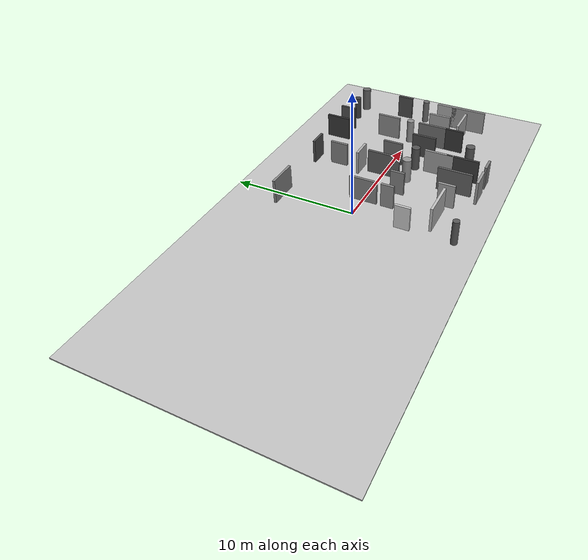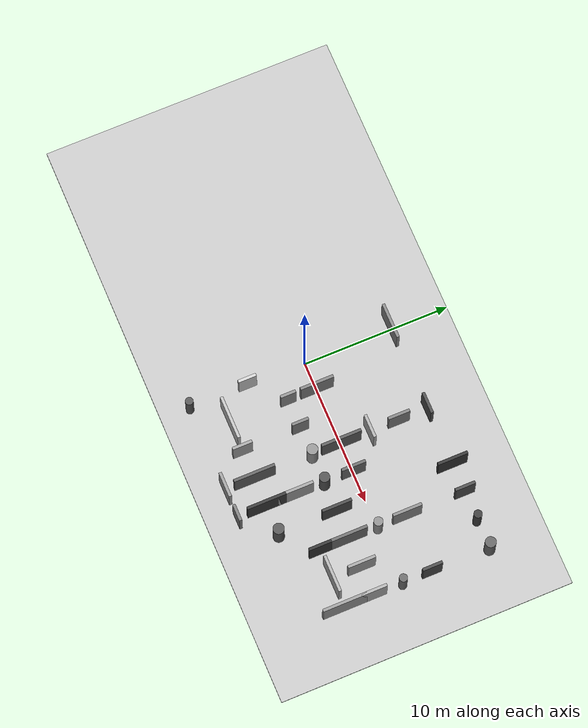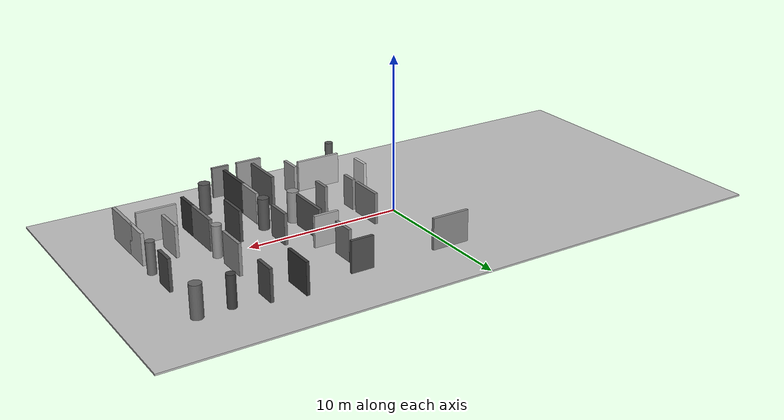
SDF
<sdf version="1.7">
 <world name="default">
  <model name="ground_plane">
   <static>true</static>
   <link name="link">
    <pose>0.0 0.0 -0.05 0 0 0</pose>
    <visual name="visual">
     <material>
      <ambient>0.7535816217733602 0.7535816217733602 0.7535816217733602 1</ambient>
      <diffuse>0.7535816217733602 0.7535816217733602 0.7535816217733602 1</diffuse>
     </material>
     <geometry><box><size>40.0 20.0 0.1</size></box></geometry>
    </visual>
    <collision name="collision">
     <geometry><box><size>40.0 20.0 0.1</size></box></geometry>
     <surface>
      <friction><ode><mu>100</mu><mu2>50.0</mu2><slip1>0.0</slip1><slip2>0.0</slip2></ode></friction>
      <contact><ode><kp>10000.0</kp><kd>100.0</kd></ode></contact>
     </surface>
    </collision>
   </link>
  </model>
  <model name="pn_pillar_36">
   <static>true</static>
   <link name="link">
    <pose>0.0 -8.0 1.0 0 0 0</pose>
    <visual name="visual">
     <material>
      <ambient>0.33702420317026577 0.33702420317026577 0.33702420317026577 1</ambient>
      <diffuse>0.33702420317026577 0.33702420317026577 0.33702420317026577 1</diffuse>
     </material>
     <geometry><cylinder><radius>0.26581402886206534</radius><length>2.0</length></cylinder></geometry>
    </visual>
    <collision name="collision">
     <geometry><cylinder><radius>0.26581402886206534</radius><length>2.0</length></cylinder></geometry>
     <surface>
      <friction><ode><mu>100</mu><mu2>50.0</mu2><slip1>0.0</slip1><slip2>0.0</slip2></ode></friction>
      <contact><ode><kp>10000.0</kp><kd>100.0</kd></ode></contact>
     </surface>
    </collision>
   </link>
  </model>
  <model name="pn_wall_37">
   <static>true</static>
   <link name="link">
    <pose>0.0 -4.0 1.0 0 0 0</pose>
    <visual name="visual">
     <material>
      <ambient>0.798513575407434 0.798513575407434 0.798513575407434 1</ambient>
      <diffuse>0.798513575407434 0.798513575407434 0.798513575407434 1</diffuse>
     </material>
     <geometry><box><size>0.2 1.237032217124113 2.0</size></box></geometry>
    </visual>
    <collision name="collision">
     <geometry><box><size>0.2 1.237032217124113 2.0</size></box></geometry>
     <surface>
      <friction><ode><mu>100</mu><mu2>50.0</mu2><slip1>0.0</slip1><slip2>0.0</slip2></ode></friction>
      <contact><ode><kp>10000.0</kp><kd>100.0</kd></ode></contact>
     </surface>
    </collision>
   </link>
  </model>
  <model name="pn_wall_38">
   <static>true</static>
   <link name="link">
    <pose>0.0 6.0 1.0 0 0 0</pose>
    <visual name="visual">
     <material>
      <ambient>0.5315325175535008 0.5315325175535008 0.5315325175535008 1</ambient>
      <diffuse>0.5315325175535008 0.5315325175535008 0.5315325175535008 1</diffuse>
     </material>
     <geometry><box><size>2.426093998447632 0.2 2.0</size></box></geometry>
    </visual>
    <collision name="collision">
     <geometry><box><size>2.426093998447632 0.2 2.0</size></box></geometry>
     <surface>
      <friction><ode><mu>100</mu><mu2>50.0</mu2><slip1>0.0</slip1><slip2>0.0</slip2></ode></friction>
      <contact><ode><kp>10000.0</kp><kd>100.0</kd></ode></contact>
     </surface>
    </collision>
   </link>
  </model>
  <model name="pn_wall_39">
   <static>true</static>
   <link name="link">
    <pose>2.0 -6.0 1.0 0 0 0</pose>
    <visual name="visual">
     <material>
      <ambient>0.7362320643856635 0.7362320643856635 0.7362320643856635 1</ambient>
      <diffuse>0.7362320643856635 0.7362320643856635 0.7362320643856635 1</diffuse>
     </material>
     <geometry><box><size>2.9413728022067014 0.2 2.0</size></box></geometry>
    </visual>
    <collision name="collision">
     <geometry><box><size>2.9413728022067014 0.2 2.0</size></box></geometry>
     <surface>
      <friction><ode><mu>100</mu><mu2>50.0</mu2><slip1>0.0</slip1><slip2>0.0</slip2></ode></friction>
      <contact><ode><kp>10000.0</kp><kd>100.0</kd></ode></contact>
     </surface>
    </collision>
   </link>
  </model>
  <model name="pn_wall_40">
   <static>true</static>
   <link name="link">
    <pose>2.0 -2.0 1.0 0 0 0</pose>
    <visual name="visual">
     <material>
      <ambient>0.5537083821378184 0.5537083821378184 0.5537083821378184 1</ambient>
      <diffuse>0.5537083821378184 0.5537083821378184 0.5537083821378184 1</diffuse>
     </material>
     <geometry><box><size>0.2 1.0596877214101241 2.0</size></box></geometry>
    </visual>
    <collision name="collision">
     <geometry><box><size>0.2 1.0596877214101241 2.0</size></box></geometry>
     <surface>
      <friction><ode><mu>100</mu><mu2>50.0</mu2><slip1>0.0</slip1><slip2>0.0</slip2></ode></friction>
      <contact><ode><kp>10000.0</kp><kd>100.0</kd></ode></contact>
     </surface>
    </collision>
   </link>
  </model>
  <model name="pn_wall_41">
   <static>true</static>
   <link name="link">
    <pose>2.0 0.0 1.0 0 0 0</pose>
    <visual name="visual">
     <material>
      <ambient>0.5077925392311062 0.5077925392311062 0.5077925392311062 1</ambient>
      <diffuse>0.5077925392311062 0.5077925392311062 0.5077925392311062 1</diffuse>
     </material>
     <geometry><box><size>0.2 2.2766122840801226 2.0</size></box></geometry>
    </visual>
    <collision name="collision">
     <geometry><box><size>0.2 2.2766122840801226 2.0</size></box></geometry>
     <surface>
      <friction><ode><mu>100</mu><mu2>50.0</mu2><slip1>0.0</slip1><slip2>0.0</slip2></ode></friction>
      <contact><ode><kp>10000.0</kp><kd>100.0</kd></ode></contact>
     </surface>
    </collision>
   </link>
  </model>
  <model name="pn_wall_42">
   <static>true</static>
   <link name="link">
    <pose>4.0 -6.0 1.0 0 0 0</pose>
    <visual name="visual">
     <material>
      <ambient>0.6366177036136795 0.6366177036136795 0.6366177036136795 1</ambient>
      <diffuse>0.6366177036136795 0.6366177036136795 0.6366177036136795 1</diffuse>
     </material>
     <geometry><box><size>0.2 1.3540173830277265 2.0</size></box></geometry>
    </visual>
    <collision name="collision">
     <geometry><box><size>0.2 1.3540173830277265 2.0</size></box></geometry>
     <surface>
      <friction><ode><mu>100</mu><mu2>50.0</mu2><slip1>0.0</slip1><slip2>0.0</slip2></ode></friction>
      <contact><ode><kp>10000.0</kp><kd>100.0</kd></ode></contact>
     </surface>
    </collision>
   </link>
  </model>
  <model name="pn_wall_43">
   <static>true</static>
   <link name="link">
    <pose>4.0 -2.0 1.0 0 0 0</pose>
    <visual name="visual">
     <material>
      <ambient>0.505876637994478 0.505876637994478 0.505876637994478 1</ambient>
      <diffuse>0.505876637994478 0.505876637994478 0.505876637994478 1</diffuse>
     </material>
     <geometry><box><size>0.2 1.1434389061023358 2.0</size></box></geometry>
    </visual>
    <collision name="collision">
     <geometry><box><size>0.2 1.1434389061023358 2.0</size></box></geometry>
     <surface>
      <friction><ode><mu>100</mu><mu2>50.0</mu2><slip1>0.0</slip1><slip2>0.0</slip2></ode></friction>
      <contact><ode><kp>10000.0</kp><kd>100.0</kd></ode></contact>
     </surface>
    </collision>
   </link>
  </model>
  <model name="pn_wall_44">
   <static>true</static>
   <link name="link">
    <pose>6.0 -8.0 1.0 0 0 0</pose>
    <visual name="visual">
     <material>
      <ambient>0.6090184408394677 0.6090184408394677 0.6090184408394677 1</ambient>
      <diffuse>0.6090184408394677 0.6090184408394677 0.6090184408394677 1</diffuse>
     </material>
     <geometry><box><size>1.704034391255914 0.2 2.0</size></box></geometry>
    </visual>
    <collision name="collision">
     <geometry><box><size>1.704034391255914 0.2 2.0</size></box></geometry>
     <surface>
      <friction><ode><mu>100</mu><mu2>50.0</mu2><slip1>0.0</slip1><slip2>0.0</slip2></ode></friction>
      <contact><ode><kp>10000.0</kp><kd>100.0</kd></ode></contact>
     </surface>
    </collision>
   </link>
  </model>
  <model name="pn_wall_45">
   <static>true</static>
   <link name="link">
    <pose>6.0 -6.0 1.0 0 0 0</pose>
    <visual name="visual">
     <material>
      <ambient>0.38466146864269846 0.38466146864269846 0.38466146864269846 1</ambient>
      <diffuse>0.38466146864269846 0.38466146864269846 0.38466146864269846 1</diffuse>
     </material>
     <geometry><box><size>0.2 2.8123936497457684 2.0</size></box></geometry>
    </visual>
    <collision name="collision">
     <geometry><box><size>0.2 2.8123936497457684 2.0</size></box></geometry>
     <surface>
      <friction><ode><mu>100</mu><mu2>50.0</mu2><slip1>0.0</slip1><slip2>0.0</slip2></ode></friction>
      <contact><ode><kp>10000.0</kp><kd>100.0</kd></ode></contact>
     </surface>
    </collision>
   </link>
  </model>
  <model name="pn_pillar_46">
   <static>true</static>
   <link name="link">
    <pose>6.0 -2.0 1.0 0 0 0</pose>
    <visual name="visual">
     <material>
      <ambient>0.5671794305619734 0.5671794305619734 0.5671794305619734 1</ambient>
      <diffuse>0.5671794305619734 0.5671794305619734 0.5671794305619734 1</diffuse>
     </material>
     <geometry><cylinder><radius>0.3707865974004749</radius><length>2.0</length></cylinder></geometry>
    </visual>
    <collision name="collision">
     <geometry><cylinder><radius>0.3707865974004749</radius><length>2.0</length></cylinder></geometry>
     <surface>
      <friction><ode><mu>100</mu><mu2>50.0</mu2><slip1>0.0</slip1><slip2>0.0</slip2></ode></friction>
      <contact><ode><kp>10000.0</kp><kd>100.0</kd></ode></contact>
     </surface>
    </collision>
   </link>
  </model>
  <model name="pn_wall_47">
   <static>true</static>
   <link name="link">
    <pose>6.0 0.0 1.0 0 0 0</pose>
    <visual name="visual">
     <material>
      <ambient>0.36766678372788875 0.36766678372788875 0.36766678372788875 1</ambient>
      <diffuse>0.36766678372788875 0.36766678372788875 0.36766678372788875 1</diffuse>
     </material>
     <geometry><box><size>0.2 2.73785276273807 2.0</size></box></geometry>
    </visual>
    <collision name="collision">
     <geometry><box><size>0.2 2.73785276273807 2.0</size></box></geometry>
     <surface>
      <friction><ode><mu>100</mu><mu2>50.0</mu2><slip1>0.0</slip1><slip2>0.0</slip2></ode></friction>
      <contact><ode><kp>10000.0</kp><kd>100.0</kd></ode></contact>
     </surface>
    </collision>
   </link>
  </model>
  <model name="pn_wall_48">
   <static>true</static>
   <link name="link">
    <pose>6.0 2.0 1.0 0 0 0</pose>
    <visual name="visual">
     <material>
      <ambient>0.6784951828039842 0.6784951828039842 0.6784951828039842 1</ambient>
      <diffuse>0.6784951828039842 0.6784951828039842 0.6784951828039842 1</diffuse>
     </material>
     <geometry><box><size>1.6064513385768302 0.2 2.0</size></box></geometry>
    </visual>
    <collision name="collision">
     <geometry><box><size>1.6064513385768302 0.2 2.0</size></box></geometry>
     <surface>
      <friction><ode><mu>100</mu><mu2>50.0</mu2><slip1>0.0</slip1><slip2>0.0</slip2></ode></friction>
      <contact><ode><kp>10000.0</kp><kd>100.0</kd></ode></contact>
     </surface>
    </collision>
   </link>
  </model>
  <model name="pn_wall_49">
   <static>true</static>
   <link name="link">
    <pose>6.0 4.0 1.0 0 0 0</pose>
    <visual name="visual">
     <material>
      <ambient>0.500079279258266 0.500079279258266 0.500079279258266 1</ambient>
      <diffuse>0.500079279258266 0.500079279258266 0.500079279258266 1</diffuse>
     </material>
     <geometry><box><size>0.2 1.4780950709816867 2.0</size></box></geometry>
    </visual>
    <collision name="collision">
     <geometry><box><size>0.2 1.4780950709816867 2.0</size></box></geometry>
     <surface>
      <friction><ode><mu>100</mu><mu2>50.0</mu2><slip1>0.0</slip1><slip2>0.0</slip2></ode></friction>
      <contact><ode><kp>10000.0</kp><kd>100.0</kd></ode></contact>
     </surface>
    </collision>
   </link>
  </model>
  <model name="pn_wall_50">
   <static>true</static>
   <link name="link">
    <pose>6.0 6.0 1.0 0 0 0</pose>
    <visual name="visual">
     <material>
      <ambient>0.30949495093621376 0.30949495093621376 0.30949495093621376 1</ambient>
      <diffuse>0.30949495093621376 0.30949495093621376 0.30949495093621376 1</diffuse>
     </material>
     <geometry><box><size>1.466066561398027 0.2 2.0</size></box></geometry>
    </visual>
    <collision name="collision">
     <geometry><box><size>1.466066561398027 0.2 2.0</size></box></geometry>
     <surface>
      <friction><ode><mu>100</mu><mu2>50.0</mu2><slip1>0.0</slip1><slip2>0.0</slip2></ode></friction>
      <contact><ode><kp>10000.0</kp><kd>100.0</kd></ode></contact>
     </surface>
    </collision>
   </link>
  </model>
  <model name="pn_wall_51">
   <static>true</static>
   <link name="link">
    <pose>8.0 -8.0 1.0 0 0 0</pose>
    <visual name="visual">
     <material>
      <ambient>0.4970963275652117 0.4970963275652117 0.4970963275652117 1</ambient>
      <diffuse>0.4970963275652117 0.4970963275652117 0.4970963275652117 1</diffuse>
     </material>
     <geometry><box><size>1.1441828347300091 0.2 2.0</size></box></geometry>
    </visual>
    <collision name="collision">
     <geometry><box><size>1.1441828347300091 0.2 2.0</size></box></geometry>
     <surface>
      <friction><ode><mu>100</mu><mu2>50.0</mu2><slip1>0.0</slip1><slip2>0.0</slip2></ode></friction>
      <contact><ode><kp>10000.0</kp><kd>100.0</kd></ode></contact>
     </surface>
    </collision>
   </link>
  </model>
  <model name="pn_wall_52">
   <static>true</static>
   <link name="link">
    <pose>8.0 -6.0 1.0 0 0 0</pose>
    <visual name="visual">
     <material>
      <ambient>0.2325904337042177 0.2325904337042177 0.2325904337042177 1</ambient>
      <diffuse>0.2325904337042177 0.2325904337042177 0.2325904337042177 1</diffuse>
     </material>
     <geometry><box><size>0.2 2.651976561176255 2.0</size></box></geometry>
    </visual>
    <collision name="collision">
     <geometry><box><size>0.2 2.651976561176255 2.0</size></box></geometry>
     <surface>
      <friction><ode><mu>100</mu><mu2>50.0</mu2><slip1>0.0</slip1><slip2>0.0</slip2></ode></friction>
      <contact><ode><kp>10000.0</kp><kd>100.0</kd></ode></contact>
     </surface>
    </collision>
   </link>
  </model>
  <model name="pn_wall_53">
   <static>true</static>
   <link name="link">
    <pose>8.0 -4.0 1.0 0 0 0</pose>
    <visual name="visual">
     <material>
      <ambient>0.6249055409510492 0.6249055409510492 0.6249055409510492 1</ambient>
      <diffuse>0.6249055409510492 0.6249055409510492 0.6249055409510492 1</diffuse>
     </material>
     <geometry><box><size>0.2 2.4329079809341705 2.0</size></box></geometry>
    </visual>
    <collision name="collision">
     <geometry><box><size>0.2 2.4329079809341705 2.0</size></box></geometry>
     <surface>
      <friction><ode><mu>100</mu><mu2>50.0</mu2><slip1>0.0</slip1><slip2>0.0</slip2></ode></friction>
      <contact><ode><kp>10000.0</kp><kd>100.0</kd></ode></contact>
     </surface>
    </collision>
   </link>
  </model>
  <model name="pn_pillar_54">
   <static>true</static>
   <link name="link">
    <pose>8.0 -2.0 1.0 0 0 0</pose>
    <visual name="visual">
     <material>
      <ambient>0.3172600690091154 0.3172600690091154 0.3172600690091154 1</ambient>
      <diffuse>0.3172600690091154 0.3172600690091154 0.3172600690091154 1</diffuse>
     </material>
     <geometry><cylinder><radius>0.3519795635796129</radius><length>2.0</length></cylinder></geometry>
    </visual>
    <collision name="collision">
     <geometry><cylinder><radius>0.3519795635796129</radius><length>2.0</length></cylinder></geometry>
     <surface>
      <friction><ode><mu>100</mu><mu2>50.0</mu2><slip1>0.0</slip1><slip2>0.0</slip2></ode></friction>
      <contact><ode><kp>10000.0</kp><kd>100.0</kd></ode></contact>
     </surface>
    </collision>
   </link>
  </model>
  <model name="pn_wall_55">
   <static>true</static>
   <link name="link">
    <pose>8.0 0.0 1.0 0 0 0</pose>
    <visual name="visual">
     <material>
      <ambient>0.41998735627412376 0.41998735627412376 0.41998735627412376 1</ambient>
      <diffuse>0.41998735627412376 0.41998735627412376 0.41998735627412376 1</diffuse>
     </material>
     <geometry><box><size>0.2 1.6448978918552193 2.0</size></box></geometry>
    </visual>
    <collision name="collision">
     <geometry><box><size>0.2 1.6448978918552193 2.0</size></box></geometry>
     <surface>
      <friction><ode><mu>100</mu><mu2>50.0</mu2><slip1>0.0</slip1><slip2>0.0</slip2></ode></friction>
      <contact><ode><kp>10000.0</kp><kd>100.0</kd></ode></contact>
     </surface>
    </collision>
   </link>
  </model>
  <model name="pn_pillar_56">
   <static>true</static>
   <link name="link">
    <pose>10.0 -6.0 1.0 0 0 0</pose>
    <visual name="visual">
     <material>
      <ambient>0.3330897144930777 0.3330897144930777 0.3330897144930777 1</ambient>
      <diffuse>0.3330897144930777 0.3330897144930777 0.3330897144930777 1</diffuse>
     </material>
     <geometry><cylinder><radius>0.373517401540794</radius><length>2.0</length></cylinder></geometry>
    </visual>
    <collision name="collision">
     <geometry><cylinder><radius>0.373517401540794</radius><length>2.0</length></cylinder></geometry>
     <surface>
      <friction><ode><mu>100</mu><mu2>50.0</mu2><slip1>0.0</slip1><slip2>0.0</slip2></ode></friction>
      <contact><ode><kp>10000.0</kp><kd>100.0</kd></ode></contact>
     </surface>
    </collision>
   </link>
  </model>
  <model name="pn_wall_57">
   <static>true</static>
   <link name="link">
    <pose>10.0 -2.0 1.0 0 0 0</pose>
    <visual name="visual">
     <material>
      <ambient>0.2890973777766448 0.2890973777766448 0.2890973777766448 1</ambient>
      <diffuse>0.2890973777766448 0.2890973777766448 0.2890973777766448 1</diffuse>
     </material>
     <geometry><box><size>0.2 2.027619129427921 2.0</size></box></geometry>
    </visual>
    <collision name="collision">
     <geometry><box><size>0.2 2.027619129427921 2.0</size></box></geometry>
     <surface>
      <friction><ode><mu>100</mu><mu2>50.0</mu2><slip1>0.0</slip1><slip2>0.0</slip2></ode></friction>
      <contact><ode><kp>10000.0</kp><kd>100.0</kd></ode></contact>
     </surface>
    </collision>
   </link>
  </model>
  <model name="pn_wall_58">
   <static>true</static>
   <link name="link">
    <pose>10.0 6.0 1.0 0 0 0</pose>
    <visual name="visual">
     <material>
      <ambient>0.21622186705510027 0.21622186705510027 0.21622186705510027 1</ambient>
      <diffuse>0.21622186705510027 0.21622186705510027 0.21622186705510027 1</diffuse>
     </material>
     <geometry><box><size>0.2 2.0616949405530907 2.0</size></box></geometry>
    </visual>
    <collision name="collision">
     <geometry><box><size>0.2 2.0616949405530907 2.0</size></box></geometry>
     <surface>
      <friction><ode><mu>100</mu><mu2>50.0</mu2><slip1>0.0</slip1><slip2>0.0</slip2></ode></friction>
      <contact><ode><kp>10000.0</kp><kd>100.0</kd></ode></contact>
     </surface>
    </collision>
   </link>
  </model>
  <model name="pn_wall_59">
   <static>true</static>
   <link name="link">
    <pose>12.0 -4.0 1.0 0 0 0</pose>
    <visual name="visual">
     <material>
      <ambient>0.21432388822856582 0.21432388822856582 0.21432388822856582 1</ambient>
      <diffuse>0.21432388822856582 0.21432388822856582 0.21432388822856582 1</diffuse>
     </material>
     <geometry><box><size>0.2 1.5418386403034654 2.0</size></box></geometry>
    </visual>
    <collision name="collision">
     <geometry><box><size>0.2 1.5418386403034654 2.0</size></box></geometry>
     <surface>
      <friction><ode><mu>100</mu><mu2>50.0</mu2><slip1>0.0</slip1><slip2>0.0</slip2></ode></friction>
      <contact><ode><kp>10000.0</kp><kd>100.0</kd></ode></contact>
     </surface>
    </collision>
   </link>
  </model>
  <model name="pn_wall_60">
   <static>true</static>
   <link name="link">
    <pose>12.0 -2.0 1.0 0 0 0</pose>
    <visual name="visual">
     <material>
      <ambient>0.43146565582937557 0.43146565582937557 0.43146565582937557 1</ambient>
      <diffuse>0.43146565582937557 0.43146565582937557 0.43146565582937557 1</diffuse>
     </material>
     <geometry><box><size>0.2 2.454107392523608 2.0</size></box></geometry>
    </visual>
    <collision name="collision">
     <geometry><box><size>0.2 2.454107392523608 2.0</size></box></geometry>
     <surface>
      <friction><ode><mu>100</mu><mu2>50.0</mu2><slip1>0.0</slip1><slip2>0.0</slip2></ode></friction>
      <contact><ode><kp>10000.0</kp><kd>100.0</kd></ode></contact>
     </surface>
    </collision>
   </link>
  </model>
  <model name="pn_pillar_61">
   <static>true</static>
   <link name="link">
    <pose>12.0 0.0 1.0 0 0 0</pose>
    <visual name="visual">
     <material>
      <ambient>0.551856405334003 0.551856405334003 0.551856405334003 1</ambient>
      <diffuse>0.551856405334003 0.551856405334003 0.551856405334003 1</diffuse>
     </material>
     <geometry><cylinder><radius>0.30538811881444</radius><length>2.0</length></cylinder></geometry>
    </visual>
    <collision name="collision">
     <geometry><cylinder><radius>0.30538811881444</radius><length>2.0</length></cylinder></geometry>
     <surface>
      <friction><ode><mu>100</mu><mu2>50.0</mu2><slip1>0.0</slip1><slip2>0.0</slip2></ode></friction>
      <contact><ode><kp>10000.0</kp><kd>100.0</kd></ode></contact>
     </surface>
    </collision>
   </link>
  </model>
  <model name="pn_wall_62">
   <static>true</static>
   <link name="link">
    <pose>12.0 2.0 1.0 0 0 0</pose>
    <visual name="visual">
     <material>
      <ambient>0.5407036239115727 0.5407036239115727 0.5407036239115727 1</ambient>
      <diffuse>0.5407036239115727 0.5407036239115727 0.5407036239115727 1</diffuse>
     </material>
     <geometry><box><size>0.2 1.979147673604517 2.0</size></box></geometry>
    </visual>
    <collision name="collision">
     <geometry><box><size>0.2 1.979147673604517 2.0</size></box></geometry>
     <surface>
      <friction><ode><mu>100</mu><mu2>50.0</mu2><slip1>0.0</slip1><slip2>0.0</slip2></ode></friction>
      <contact><ode><kp>10000.0</kp><kd>100.0</kd></ode></contact>
     </surface>
    </collision>
   </link>
  </model>
  <model name="pn_wall_63">
   <static>true</static>
   <link name="link">
    <pose>12.0 6.0 1.0 0 0 0</pose>
    <visual name="visual">
     <material>
      <ambient>0.30835208122400654 0.30835208122400654 0.30835208122400654 1</ambient>
      <diffuse>0.30835208122400654 0.30835208122400654 0.30835208122400654 1</diffuse>
     </material>
     <geometry><box><size>0.2 1.3793566580034688 2.0</size></box></geometry>
    </visual>
    <collision name="collision">
     <geometry><box><size>0.2 1.3793566580034688 2.0</size></box></geometry>
     <surface>
      <friction><ode><mu>100</mu><mu2>50.0</mu2><slip1>0.0</slip1><slip2>0.0</slip2></ode></friction>
      <contact><ode><kp>10000.0</kp><kd>100.0</kd></ode></contact>
     </surface>
    </collision>
   </link>
  </model>
  <model name="pn_wall_64">
   <static>true</static>
   <link name="link">
    <pose>14.0 -4.0 1.0 0 0 0</pose>
    <visual name="visual">
     <material>
      <ambient>0.6816805851551755 0.6816805851551755 0.6816805851551755 1</ambient>
      <diffuse>0.6816805851551755 0.6816805851551755 0.6816805851551755 1</diffuse>
     </material>
     <geometry><box><size>2.5082701989816965 0.2 2.0</size></box></geometry>
    </visual>
    <collision name="collision">
     <geometry><box><size>2.5082701989816965 0.2 2.0</size></box></geometry>
     <surface>
      <friction><ode><mu>100</mu><mu2>50.0</mu2><slip1>0.0</slip1><slip2>0.0</slip2></ode></friction>
      <contact><ode><kp>10000.0</kp><kd>100.0</kd></ode></contact>
     </surface>
    </collision>
   </link>
  </model>
  <model name="pn_wall_65">
   <static>true</static>
   <link name="link">
    <pose>14.0 -2.0 1.0 0 0 0</pose>
    <visual name="visual">
     <material>
      <ambient>0.6282143487500815 0.6282143487500815 0.6282143487500815 1</ambient>
      <diffuse>0.6282143487500815 0.6282143487500815 0.6282143487500815 1</diffuse>
     </material>
     <geometry><box><size>0.2 1.8778871151323693 2.0</size></box></geometry>
    </visual>
    <collision name="collision">
     <geometry><box><size>0.2 1.8778871151323693 2.0</size></box></geometry>
     <surface>
      <friction><ode><mu>100</mu><mu2>50.0</mu2><slip1>0.0</slip1><slip2>0.0</slip2></ode></friction>
      <contact><ode><kp>10000.0</kp><kd>100.0</kd></ode></contact>
     </surface>
    </collision>
   </link>
  </model>
  <model name="pn_pillar_66">
   <static>true</static>
   <link name="link">
    <pose>14.0 6.0 1.0 0 0 0</pose>
    <visual name="visual">
     <material>
      <ambient>0.24007684086797654 0.24007684086797654 0.24007684086797654 1</ambient>
      <diffuse>0.24007684086797654 0.24007684086797654 0.24007684086797654 1</diffuse>
     </material>
     <geometry><cylinder><radius>0.27773887337144354</radius><length>2.0</length></cylinder></geometry>
    </visual>
    <collision name="collision">
     <geometry><cylinder><radius>0.27773887337144354</radius><length>2.0</length></cylinder></geometry>
     <surface>
      <friction><ode><mu>100</mu><mu2>50.0</mu2><slip1>0.0</slip1><slip2>0.0</slip2></ode></friction>
      <contact><ode><kp>10000.0</kp><kd>100.0</kd></ode></contact>
     </surface>
    </collision>
   </link>
  </model>
  <model name="pn_wall_67">
   <static>true</static>
   <link name="link">
    <pose>16.0 -4.0 1.0 0 0 0</pose>
    <visual name="visual">
     <material>
      <ambient>0.6017997984824335 0.6017997984824335 0.6017997984824335 1</ambient>
      <diffuse>0.6017997984824335 0.6017997984824335 0.6017997984824335 1</diffuse>
     </material>
     <geometry><box><size>0.2 2.999545087200124 2.0</size></box></geometry>
    </visual>
    <collision name="collision">
     <geometry><box><size>0.2 2.999545087200124 2.0</size></box></geometry>
     <surface>
      <friction><ode><mu>100</mu><mu2>50.0</mu2><slip1>0.0</slip1><slip2>0.0</slip2></ode></friction>
      <contact><ode><kp>10000.0</kp><kd>100.0</kd></ode></contact>
     </surface>
    </collision>
   </link>
  </model>
  <model name="pn_wall_68">
   <static>true</static>
   <link name="link">
    <pose>16.0 -2.0 1.0 0 0 0</pose>
    <visual name="visual">
     <material>
      <ambient>0.6769462906379267 0.6769462906379267 0.6769462906379267 1</ambient>
      <diffuse>0.6769462906379267 0.6769462906379267 0.6769462906379267 1</diffuse>
     </material>
     <geometry><box><size>0.2 1.74445972609543 2.0</size></box></geometry>
    </visual>
    <collision name="collision">
     <geometry><box><size>0.2 1.74445972609543 2.0</size></box></geometry>
     <surface>
      <friction><ode><mu>100</mu><mu2>50.0</mu2><slip1>0.0</slip1><slip2>0.0</slip2></ode></friction>
      <contact><ode><kp>10000.0</kp><kd>100.0</kd></ode></contact>
     </surface>
    </collision>
   </link>
  </model>
  <model name="pn_pillar_69">
   <static>true</static>
   <link name="link">
    <pose>16.0 0.0 1.0 0 0 0</pose>
    <visual name="visual">
     <material>
      <ambient>0.4104896031039495 0.4104896031039495 0.4104896031039495 1</ambient>
      <diffuse>0.4104896031039495 0.4104896031039495 0.4104896031039495 1</diffuse>
     </material>
     <geometry><cylinder><radius>0.274124342783015</radius><length>2.0</length></cylinder></geometry>
    </visual>
    <collision name="collision">
     <geometry><cylinder><radius>0.274124342783015</radius><length>2.0</length></cylinder></geometry>
     <surface>
      <friction><ode><mu>100</mu><mu2>50.0</mu2><slip1>0.0</slip1><slip2>0.0</slip2></ode></friction>
      <contact><ode><kp>10000.0</kp><kd>100.0</kd></ode></contact>
     </surface>
    </collision>
   </link>
  </model>
  <model name="pn_wall_70">
   <static>true</static>
   <link name="link">
    <pose>16.0 2.0 1.0 0 0 0</pose>
    <visual name="visual">
     <material>
      <ambient>0.29548134318513514 0.29548134318513514 0.29548134318513514 1</ambient>
      <diffuse>0.29548134318513514 0.29548134318513514 0.29548134318513514 1</diffuse>
     </material>
     <geometry><box><size>0.2 1.345969293479064 2.0</size></box></geometry>
    </visual>
    <collision name="collision">
     <geometry><box><size>0.2 1.345969293479064 2.0</size></box></geometry>
     <surface>
      <friction><ode><mu>100</mu><mu2>50.0</mu2><slip1>0.0</slip1><slip2>0.0</slip2></ode></friction>
      <contact><ode><kp>10000.0</kp><kd>100.0</kd></ode></contact>
     </surface>
    </collision>
   </link>
  </model>
  <model name="pn_pillar_71">
   <static>true</static>
   <link name="link">
    <pose>16.0 6.0 1.0 0 0 0</pose>
    <visual name="visual">
     <material>
      <ambient>0.38924551594905077 0.38924551594905077 0.38924551594905077 1</ambient>
      <diffuse>0.38924551594905077 0.38924551594905077 0.38924551594905077 1</diffuse>
     </material>
     <geometry><cylinder><radius>0.36857144834766353</radius><length>2.0</length></cylinder></geometry>
    </visual>
    <collision name="collision">
     <geometry><cylinder><radius>0.36857144834766353</radius><length>2.0</length></cylinder></geometry>
     <surface>
      <friction><ode><mu>100</mu><mu2>50.0</mu2><slip1>0.0</slip1><slip2>0.0</slip2></ode></friction>
      <contact><ode><kp>10000.0</kp><kd>100.0</kd></ode></contact>
     </surface>
    </collision>
   </link>
  </model>
 </world>
</sdf>
